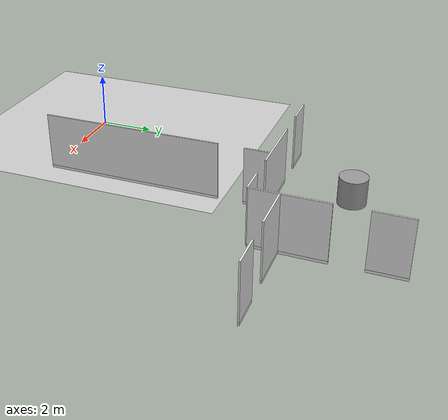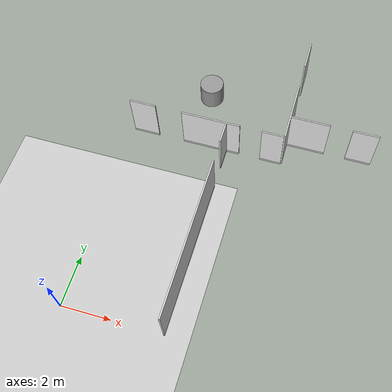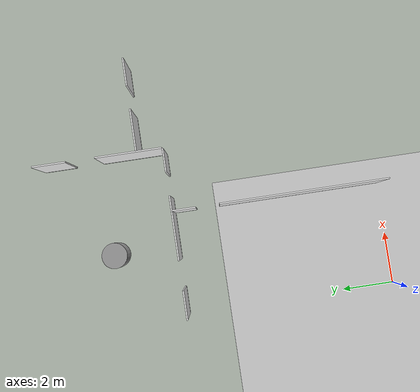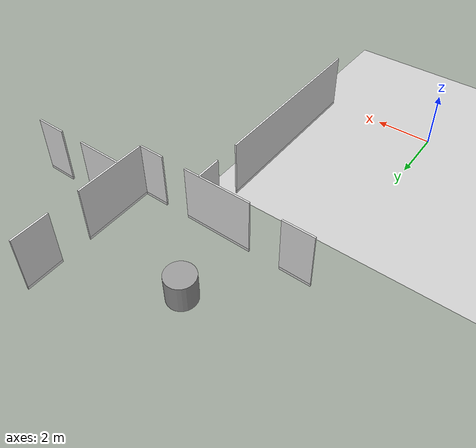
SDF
<sdf version="1.4">
 <world name="default">
  <scene>
   <ambient>0.5 0.5 0.5 1</ambient>
   <shadows>0</shadows>
   <grid>0</grid>
   <background>0.7 0.7 0.7 1</background>
  </scene>
  <physics type="ode">
   <real_time_update_rate>250.0</real_time_update_rate>
   <max_step_size>0.004</max_step_size>
   <ode><solver><type>quick</type><iters>100</iters></solver><constraints><cfm>0.0001</cfm></constraints></ode>
  </physics>
  <model name="gplane">
   <link name="body">
    <collision name="gplane_coll">
     <geometry><plane><normal>0 0 1</normal><size>10.075 13.18</size></plane></geometry>
     <surface><contact><ode><kp>1e+06</kp><kd>1</kd></ode></contact></surface>
     <laser_retro>2000</laser_retro>
    </collision>
    <visual name="gplane_vis">
     <geometry><plane><normal>0 0 1</normal><size>10.075 13.18</size></plane></geometry>
     <material>
      <script>
       <uri>model://base_materials/carpet/scripts</uri>
       <uri>model://base_materials/carpet/textures</uri>
       <name>carpet/carpet01</name>
      </script>
     </material>
     <cast_shadows>0</cast_shadows>
    </visual>
    <velocity_decay><linear>0</linear><angular>0</angular></velocity_decay>
   </link>
   <static>1</static>
  </model>
  <light name="inner_point_white1" type="point">
   <pose>4 5 4 0 0 0</pose>
   <diffuse>0.2 0.2 0.2 1</diffuse>
   <specular>0.1 0.1 0.1 1</specular>
   <attenuation>
    <range>20</range>
    <linear>0.1</linear>
    <constant>0.2</constant>
    <quadratic>0</quadratic>
   </attenuation>
   <cast_shadows>0</cast_shadows>
   <direction>0 0 -1</direction>
  </light>
  <light name="inner_point_white2" type="point">
   <pose>4 10 4 0 0 0</pose>
   <diffuse>0.2 0.2 0.2 1</diffuse>
   <specular>0.1 0.1 0.1 1</specular>
   <attenuation>
    <range>20</range>
    <linear>0.1</linear>
    <constant>0.2</constant>
    <quadratic>0</quadratic>
   </attenuation>
   <cast_shadows>0</cast_shadows>
   <direction>0 0 -1</direction>
  </light>
  <light name="inner_point_white3" type="point">
   <pose>8 5 4 0 0 0</pose>
   <diffuse>0.2 0.2 0.2 1</diffuse>
   <specular>0.1 0.1 0.1 1</specular>
   <attenuation>
    <range>20</range>
    <linear>0.1</linear>
    <constant>0.2</constant>
    <quadratic>0</quadratic>
   </attenuation>
   <cast_shadows>0</cast_shadows>
   <direction>0 0 -1</direction>
  </light>
  <light name="inner_point_white4" type="point">
   <pose>8 10 4 0 0 0</pose>
   <diffuse>0.2 0.2 0.2 1</diffuse>
   <specular>0.1 0.1 0.1 1</specular>
   <attenuation>
    <range>20</range>
    <linear>0.1</linear>
    <constant>0.2</constant>
    <quadratic>0</quadratic>
   </attenuation>
   <cast_shadows>0</cast_shadows>
   <direction>0 0 -1</direction>
  </light>
  <include><static>1</static><uri>model://full_inside_wall</uri><name>inside_wall</name></include>
  <model name="unit_cylinder">
   <pose>2.72134 10.7379 0.5 0 -0 0</pose>
   <link name="link">
    <collision name="collision">
     <geometry><cylinder><radius>0.5</radius><length>1</length></cylinder></geometry>
    </collision>
    <visual name="visual">
     <geometry><cylinder><radius>0.5</radius><length>1</length></cylinder></geometry>
     <material>
      <script><name>Gazebo/Grey</name><uri>file://media/materials/scripts/gazebo.material</uri></script>
     </material>
    </visual>
   </link>
  </model>
 </world>
</sdf>

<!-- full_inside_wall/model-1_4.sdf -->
<sdf version="1.4">
    <model name='full_inside_wall'>
      <link name='link'>
        <inertial>
          <mass>50</mass>
          <inertia>
            <ixx>1</ixx>
            <ixy>0</ixy>
            <ixz>0</ixz>
            <iyy>1</iyy>
            <iyz>0</iyz>
            <izz>1</izz>
          </inertia>
        </inertial>
        <visual name='x05y01_08_bottom_frame'>
          <pose>4.075 3.215 0.05 0 0 0</pose>
          <geometry>
            <box>
              <size>0.055 6.43 0.1</size>
            </box>
          </geometry>
          <material>
            <script>
              <uri>model://base_materials/color/scripts</uri>
              <name>hsr_color/white</name>
            </script>
          </material>
        </visual>
        <collision name='x05y01_08_collision_bottom_frame'>
          <pose>4.075 3.215 0.05 0 0 0</pose>
          <geometry>
            <box>
              <size>0.055 6.43 0.1</size>
            </box>
          </geometry>
          <max_contacts>10</max_contacts>
          <surface>
            <bounce/>
            <friction>
              <ode/>
            </friction>
            <contact>
              <ode/>
            </contact>
          </surface>
        </collision>
        <visual name='x05y01_08_wall'>
          <pose>4.075 3.215 1.095 0 0 0</pose>
          <geometry>
            <box>
              <size>0.055 6.43 1.99</size>
            </box>
          </geometry>
          <material>
            <script>
              <uri>model://base_materials/wall/scripts</uri>
              <uri>model://base_materials/wall/textures</uri>
              <name>wall/white_noise</name>
            </script>
          </material>
        </visual>
        <collision name='x05y01_08_collision_wall'>
          <pose>4.075 3.2150 1.095 0 0 0</pose>
          <geometry>
            <box>
              <size>0.055 6.43 1.99</size>
            </box>
          </geometry>
          <max_contacts>10</max_contacts>
          <surface>
            <bounce/>
            <friction>
              <ode/>
            </friction>
            <contact>
              <ode/>
            </contact>
          </surface>
        </collision>
        <visual name='x05y10_bottom_frame'>
          <pose>4.075 7.78 0.05 0 0 0</pose>
          <geometry>
            <box>
              <size>0.055 0.9 0.1</size>
            </box>
          </geometry>
          <material>
            <script>
              <uri>model://base_materials/color/scripts</uri>
              <name>hsr_color/white</name>
            </script>
          </material>
        </visual>
        <collision name='x05y10_collision_bottom_frame'>
          <pose>4.075 7.78 0.05 0 0 0</pose>
          <geometry>
            <box>
              <size>0.055 0.9 0.1</size>
            </box>
          </geometry>
          <max_contacts>10</max_contacts>
          <surface>
            <bounce/>
            <friction>
              <ode/>
            </friction>
            <contact>
              <ode/>
            </contact>
          </surface>
        </collision>
        <visual name='x05y10_wall'>
          <pose>4.075 7.78 1.095 0 0 0</pose>
          <geometry>
            <box>
              <size>0.055 0.9 1.99</size>
            </box>
          </geometry>
          <material>
            <script>
              <uri>model://base_materials/wall/scripts</uri>
              <uri>model://base_materials/wall/textures</uri>
              <name>wall/white_noise</name>
            </script>
          </material>
        </visual>
        <collision name='x05y10_collision_wall'>
          <pose>4.075 7.78 1.095 0 0 0</pose>
          <geometry>
            <box>
              <size>0.055 0.9 1.99</size>
            </box>
          </geometry>
          <max_contacts>10</max_contacts>
          <surface>
            <bounce/>
            <friction>
              <ode/>
            </friction>
            <contact>
              <ode/>
            </contact>
          </surface>
        </collision>

        <visual name='x01_02_y09_bottom_frame'>
          <pose>0.55 8.23 0.05 0 0 1.5708</pose>
          <geometry>
            <box>
              <size>0.055 1.1 0.1</size>
            </box>
          </geometry>
          <material>
            <script>
              <uri>model://base_materials/color/scripts</uri>
              <name>hsr_color/white</name>
            </script>
          </material>
        </visual>
        <collision name='x01_02_y09_collision_bottom_frame'>
          <pose>0.55 8.23 0.05 0 0 1.5708</pose>
          <geometry>
            <box>
              <size>0.055 1.1 0.1</size>
            </box>
          </geometry>
          <max_contacts>10</max_contacts>
          <surface>
            <bounce/>
            <friction>
              <ode/>
            </friction>
            <contact>
              <ode/>
            </contact>
          </surface>
        </collision>
        <visual name='x01_02_y09_wall'>
          <pose>0.55 8.23 1.095 0 0 1.5708</pose>
          <geometry>
            <box>
              <size>0.055 1.1 1.99</size>
            </box>
          </geometry>
          <material>
            <script>
              <uri>model://base_materials/wall/scripts</uri>
              <uri>model://base_materials/wall/textures</uri>
              <name>wall/white_noise</name>
            </script>
          </material>
        </visual>
        <collision name='x01_02_y09_collision_wall'>
          <pose>0.55 8.23 1.095 0 0 1.5708</pose>
          <geometry>
            <box>
              <size>0.055 1.1 1.99</size>
            </box>
          </geometry>
          <max_contacts>10</max_contacts>
          <surface>
            <bounce/>
            <friction>
              <ode/>
            </friction>
            <contact>
              <ode/>
            </contact>
          </surface>
        </collision>
        <visual name='x04_07_y09_bottom_frame'>
          <pose>3.42 8.23 0.05 0 0 1.5708</pose>
          <geometry>
            <box>
              <size>0.055 2.44 0.1</size>
            </box>
          </geometry>
          <material>
            <script>
              <uri>model://base_materials/color/scripts</uri>
              <name>hsr_color/white</name>
            </script>
          </material>
        </visual>
        <collision name='x04_07_y09_collision_bottom_frame'>
          <pose>3.42 8.23 0.05 0 0 1.5708</pose>
          <geometry>
            <box>
              <size>0.055 2.44 0.1</size>
            </box>
          </geometry>
          <max_contacts>10</max_contacts>
          <surface>
            <bounce/>
            <friction>
              <ode/>
            </friction>
            <contact>
              <ode/>
            </contact>
          </surface>
        </collision>
        <visual name='x04_07_y09_wall'>
          <pose>3.42 8.23 1.095 0 0 1.5708</pose>
          <geometry>
            <box>
              <size>0.055 2.44 1.99</size>
            </box>
          </geometry>
          <material>
            <script>
              <uri>model://base_materials/wall/scripts</uri>
              <uri>model://base_materials/wall/textures</uri>
              <name>wall/white_noise</name>
            </script>
          </material>
        </visual>
        <collision name='x04_07_y09_collision_wall'>
          <pose>3.42 8.23 1.095 0 0 1.5708</pose>
          <geometry>
            <box>
              <size>0.055 2.44 1.99</size>
            </box>
          </geometry>
          <max_contacts>10</max_contacts>
          <surface>
            <bounce/>
            <friction>
              <ode/>
            </friction>
            <contact>
              <ode/>
            </contact>
          </surface>
        </collision>
        <visual name='x08y10a_bottom_frame_01'>
          <pose>5.9925 8.23 0.05 0 0 1.5708</pose>
          <geometry>
            <box>
              <size>0.055 0.9 0.1</size>
            </box>
          </geometry>
          <material>
            <script>
              <uri>model://base_materials/color/scripts</uri>
              <name>hsr_color/white</name>
            </script>
          </material>
        </visual>
        <collision name='x08y10a_collision_bottom_frame'>
          <pose>5.9925 8.23 0.05 0 0 1.5708</pose>
          <geometry>
            <box>
              <size>0.055 0.9 0.1</size>
            </box>
          </geometry>
          <max_contacts>10</max_contacts>
          <surface>
            <bounce/>
            <friction>
              <ode/>
            </friction>
            <contact>
              <ode/>
            </contact>
          </surface>
        </collision>
        <visual name='x08y10a_wall'>
          <pose>5.9925 8.23 1.095 0 0 1.5708</pose>
          <geometry>
            <box>
              <size>0.055 0.9 1.99</size>
            </box>
          </geometry>
          <material>
            <script>
              <uri>model://base_materials/wall/scripts</uri>
              <uri>model://base_materials/wall/textures</uri>
              <name>wall/white_noise</name>
            </script>
          </material>
        </visual>
        <collision name='x08y10a_collision_wall'>
          <pose>5.9925 8.23 1.095 0 0 1.5708</pose>
          <geometry>
            <box>
              <size>0.055 0.9 1.99</size>
            </box>
          </geometry>
          <max_contacts>10</max_contacts>
          <surface>
            <bounce/>
            <friction>
              <ode/>
            </friction>
            <contact>
              <ode/>
            </contact>
          </surface>
        </collision>
        <visual name='x08y10a_bottom_frame'>
          <pose>5.9925 8.23 0.05 0 0 1.5708</pose>
          <geometry>
            <box>
              <size>0.055 0.9 0.1</size>
            </box>
          </geometry>
          <material>
            <script>
              <uri>model://base_materials/color/scripts</uri>
              <name>hsr_color/white</name>
            </script>
          </material>
        </visual>
        <collision name='x08y10a_collision_bottom_frame_01'>
          <pose>5.9925 8.23 0.05 0 0 1.5708</pose>
          <geometry>
            <box>
              <size>0.055 0.9 0.1</size>
            </box>
          </geometry>
          <max_contacts>10</max_contacts>
          <surface>
            <bounce/>
            <friction>
              <ode/>
            </friction>
            <contact>
              <ode/>
            </contact>
          </surface>
        </collision>
        <visual name='x08y10a_wall_01'>
          <pose>5.9925 8.23 1.095 0 0 1.5708</pose>
          <geometry>
            <box>
              <size>0.055 0.9 1.99</size>
            </box>
          </geometry>
          <material>
            <script>
              <uri>model://base_materials/wall/scripts</uri>
              <uri>model://base_materials/wall/textures</uri>
              <name>wall/white_noise</name>
            </script>
          </material>
        </visual>
        <collision name='x08y10a_collision_wall_01'>
          <pose>5.9925 8.23 1.095 0 0 1.5708</pose>
          <geometry>
            <box>
              <size>0.055 0.9 1.99</size>
            </box>
          </geometry>
          <max_contacts>10</max_contacts>
          <surface>
            <bounce/>
            <friction>
              <ode/>
            </friction>
            <contact>
              <ode/>
            </contact>
          </surface>
        </collision>
        <visual name='x08y14_15_bottom_frame'>
          <pose>6.47 12.54 0.05 0 0 0</pose>
          <geometry>
            <box>
              <size>0.055 1.28 0.1</size>
            </box>
          </geometry>
          <material>
            <script>
              <uri>model://base_materials/color/scripts</uri>
              <name>hsr_color/white</name>
            </script>
          </material>
        </visual>
        <collision name='x08y14_15_collision_bottom_frame'>
          <pose>6.47 12.54 0.05 0 0 0</pose>
          <geometry>
            <box>
              <size>0.055 1.28 0.1</size>
            </box>
          </geometry>
          <max_contacts>10</max_contacts>
          <surface>
            <bounce/>
            <friction>
              <ode/>
            </friction>
            <contact>
              <ode/>
            </contact>
          </surface>
        </collision>
        <visual name='x08y14_15_wall'>
          <pose>6.47 12.54 1.095 0 0 0</pose>
          <geometry>
            <box>
              <size>0.055 1.28 1.99</size>
            </box>
          </geometry>
          <material>
            <script>
              <uri>model://base_materials/wall/scripts</uri>
              <uri>model://base_materials/wall/textures</uri>
              <name>wall/white_noise</name>
            </script>
          </material>
        </visual>
        <collision name='x08y14_15_collision_wall'>
          <pose>6.47 12.54 1.095 0 0 0</pose>
          <geometry>
            <box>
              <size>0.055 1.28 1.99</size>
            </box>
          </geometry>
          <max_contacts>10</max_contacts>
          <surface>
            <bounce/>
            <friction>
              <ode/>
            </friction>
            <contact>
              <ode/>
            </contact>
          </surface>
        </collision>
        <visual name='x08y10b_12_bottom_frame'>
          <pose>6.47 9.52875 0.05 0 0 0</pose>
          <geometry>
            <box>
              <size>0.055 2.5425 0.1</size>
            </box>
          </geometry>
          <material>
            <script>
              <uri>model://base_materials/color/scripts</uri>
              <name>hsr_color/white</name>
            </script>
          </material>
        </visual>
        <collision name='x08y10b_12_collision_bottom_frame'>
          <pose>6.47 9.52875 0.05 0 0 0</pose>
          <geometry>
            <box>
              <size>0.055 2.5425 0.1</size>
            </box>
          </geometry>
          <max_contacts>10</max_contacts>
          <surface>
            <bounce/>
            <friction>
              <ode/>
            </friction>
            <contact>
              <ode/>
            </contact>
          </surface>
        </collision>
        <visual name='x08y10b_12_wall'>
          <pose>6.47 9.52875 1.095 0 0 0</pose>
          <geometry>
            <box>
              <size>0.055 2.5425 1.99</size>
            </box>
          </geometry>
          <material>
            <script>
              <uri>model://base_materials/wall/scripts</uri>
              <uri>model://base_materials/wall/textures</uri>
              <name>wall/white_noise</name>
            </script>
          </material>
        </visual>
        <collision name='x08y10b_12_collision_wall'>
          <pose>6.47 9.52875 1.095 0 0 0</pose>
          <geometry>
            <box>
              <size>0.055 2.5425 1.99</size>
            </box>
          </geometry>
          <max_contacts>10</max_contacts>
          <surface>
            <bounce/>
            <friction>
              <ode/>
            </friction>
            <contact>
              <ode/>
            </contact>
          </surface>
        </collision>
        <visual name='x08_09y11b_bottom_frame'>
          <pose>7.284 9.23 0.05 0 0 1.5708</pose>
          <geometry>
            <box>
              <size>0.055 1.632 0.1</size>
            </box>
          </geometry>
          <material>
            <script>
              <uri>model://base_materials/color/scripts</uri>
              <name>hsr_color/white</name>
            </script>
          </material>
        </visual>
        <collision name='x08_09y11b_collision_bottom_frame'>
          <pose>7.284 9.23 0.05 0 0 1.5708</pose>
          <geometry>
            <box>
              <size>0.055 1.632 0.1</size>
            </box>
          </geometry>
          <max_contacts>10</max_contacts>
          <surface>
            <bounce/>
            <friction>
              <ode/>
            </friction>
            <contact>
              <ode/>
            </contact>
          </surface>
        </collision>
        <visual name='x08_09y11b_wall'>
          <pose>7.284 9.23 1.095 0 0 1.5708</pose>
          <geometry>
            <box>
              <size>0.055 1.632 1.99</size>
            </box>
          </geometry>
          <material>
            <script>
              <uri>model://base_materials/wall/scripts</uri>
              <uri>model://base_materials/wall/textures</uri>
              <name>wall/white_noise</name>
            </script>
          </material>
        </visual>
        <collision name='x08_09y11b_collision_wall'>
          <pose>7.284 9.23 1.095 0 0 1.5708</pose>
          <geometry>
            <box>
              <size>0.055 1.632 1.99</size>
            </box>
          </geometry>
          <max_contacts>10</max_contacts>
          <surface>
            <bounce/>
            <friction>
              <ode/>
            </friction>
            <contact>
              <ode/>
            </contact>
          </surface>
        </collision>

        <visual name='x11_12y11_bottom_frame'>
          <pose>9.5375 9.23 0.05 0 0 1.5708</pose>
          <geometry>
            <box>
              <size>0.055 1.075 0.1</size>
            </box>
          </geometry>
          <material>
            <script>
              <uri>model://base_materials/color/scripts</uri>
              <name>hsr_color/white</name>
            </script>
          </material>
        </visual>
        <collision name='x11_12y11_collision_bottom_frame'>
          <pose>9.5375 9.23 0.05 0 0 1.5708</pose>
          <geometry>
            <box>
              <size>0.055 1.075 0.1</size>
            </box>
          </geometry>
          <max_contacts>10</max_contacts>
          <surface>
            <bounce/>
            <friction>
              <ode/>
            </friction>
            <contact>
              <ode/>
            </contact>
          </surface>
        </collision>
        <visual name='x11_12y11_wall'>
          <pose>9.5375 9.23 1.095 0 0 1.5708</pose>
          <geometry>
            <box>
              <size>0.055 1.075 1.99</size>
            </box>
          </geometry>
          <material>
            <script>
              <uri>model://base_materials/wall/scripts</uri>
              <uri>model://base_materials/wall/textures</uri>
              <name>wall/white_noise</name>
            </script>
          </material>
        </visual>
        <collision name='x11_12y11_collision_wall'>
          <pose>9.5375 9.23 1.095 0 0 1.5708</pose>
          <geometry>
            <box>
              <size>0.055 1.075 1.99</size>
            </box>
          </geometry>
          <max_contacts>10</max_contacts>
          <surface>
            <bounce/>
            <friction>
              <ode/>
            </friction>
            <contact>
              <ode/>
            </contact>
          </surface>
        </collision>

        <velocity_decay>
          <linear>0</linear>
          <angular>0</angular>
        </velocity_decay>
        <self_collide>0</self_collide>
        <kinematic>0</kinematic>
        <gravity>1</gravity>
      </link>
      <static>1</static>
    </model>
</sdf>
